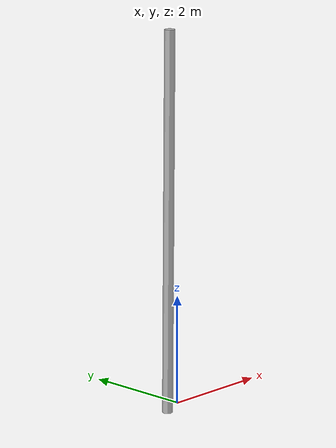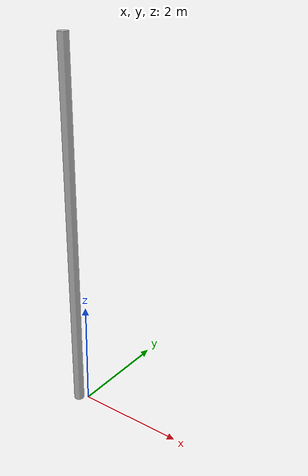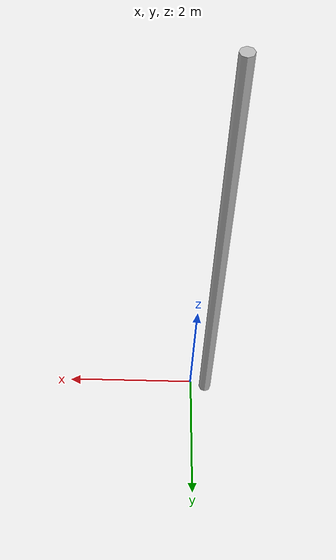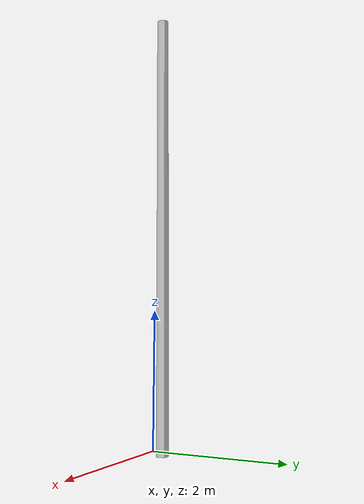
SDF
<?xml version='1.0'?>
<sdf version="1.4">
  <model name="park_tree_6">
    <static>true</static>
    <link name="link">
      <collision name="collision">
        <geometry>
          <mesh>
            <uri>model://park_tree_6/meshes/collision.dae</uri>
          </mesh>
        </geometry>
      </collision>
      <visual name="visual">
        <geometry>
          <mesh>
            <uri>model://park_tree_6/meshes/park_tree_6.dae</uri>
          </mesh>
        </geometry>
      </visual>
    </link>
  </model>
</sdf>
